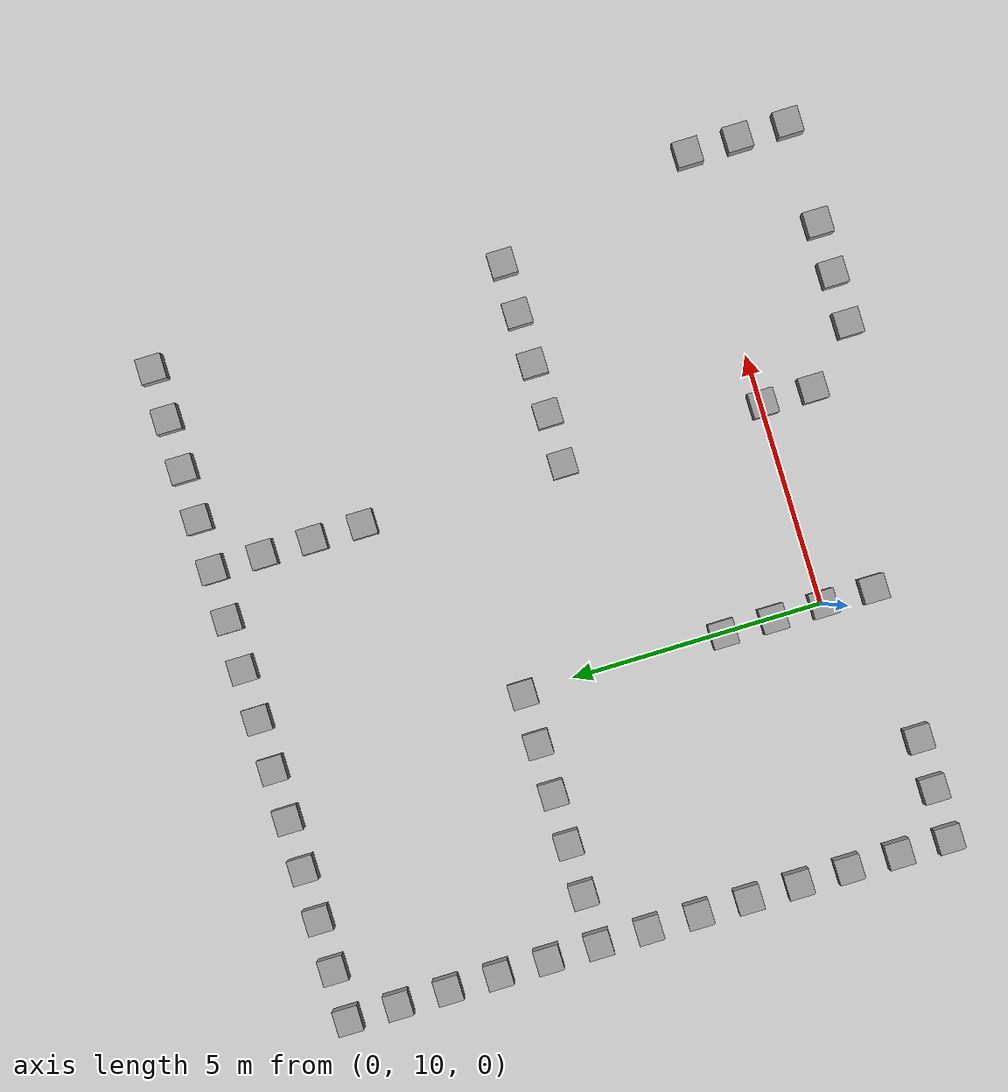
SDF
<sdf version="1.6">
 <world name="default">
  <model name="ground_plane">
   <static>1</static>
   <link name="link">
    <collision name="collision">
     <geometry><plane><normal>0 0 1</normal><size>100 100</size></plane></geometry>
     <surface><friction><ode><mu>100</mu><mu2>50</mu2></ode></friction></surface>
    </collision>
    <visual name="visual">
     <cast_shadows>0</cast_shadows>
     <geometry><plane><normal>0 0 1</normal><size>100 100</size></plane></geometry>
     <material>
      <script><uri>file://media/materials/scripts/gazebo.material</uri><name>Gazebo/Grey</name></script>
     </material>
    </visual>
    <velocity_decay><linear>0</linear><angular>0</angular></velocity_decay>
   </link>
  </model>
  <model name="unit_box_39">
   <pose>9 8.00001 0.5 0 -0 -1e-06</pose>
   <static>true</static>
   <link name="link">
    <inertial>
     <mass>1</mass>
     <inertia><ixx>1</ixx><ixy>0</ixy><ixz>0</ixz><iyy>1</iyy><iyz>0</iyz><izz>1</izz></inertia>
    </inertial>
    <collision name="collision"><geometry><box><size>0.5 0.5 0.5</size></box></geometry></collision>
    <visual name="visual">
     <geometry><box><size>0.5 0.5 0.5</size></box></geometry>
     <material>
      <script><uri>file://media/materials/scripts/gazebo.material</uri><name>Gazebo/Grey</name></script>
     </material>
    </visual>
    <velocity_decay><linear>0</linear><angular>0</angular></velocity_decay>
   </link>
   <static>0</static>
  </model>
  <model name="unit_box_52">
   <pose>7 8.00001 0.5 0 -0 1e-06</pose>
   <static>true</static>
   <link name="link">
    <inertial>
     <mass>1</mass>
     <inertia><ixx>1</ixx><ixy>0</ixy><ixz>0</ixz><iyy>1</iyy><iyz>0</iyz><izz>1</izz></inertia>
    </inertial>
    <collision name="collision"><geometry><box><size>0.5 0.5 0.5</size></box></geometry></collision>
    <visual name="visual">
     <geometry><box><size>0.5 0.5 0.5</size></box></geometry>
     <material>
      <script><uri>file://media/materials/scripts/gazebo.material</uri><name>Gazebo/Grey</name></script>
     </material>
    </visual>
    <velocity_decay><linear>0</linear><angular>0</angular></velocity_decay>
   </link>
   <static>0</static>
  </model>
  <model name="unit_box_53">
   <pose>6 8 0.5 0 -0 -3e-06</pose>
   <static>true</static>
   <link name="link">
    <inertial>
     <mass>1</mass>
     <inertia><ixx>1</ixx><ixy>0</ixy><ixz>0</ixz><iyy>1</iyy><iyz>0</iyz><izz>1</izz></inertia>
    </inertial>
    <collision name="collision"><geometry><box><size>0.5 0.5 0.5</size></box></geometry></collision>
    <visual name="visual">
     <geometry><box><size>0.5 0.5 0.5</size></box></geometry>
     <material>
      <script><uri>file://media/materials/scripts/gazebo.material</uri><name>Gazebo/Grey</name></script>
     </material>
    </visual>
    <velocity_decay><linear>0</linear><angular>0</angular></velocity_decay>
   </link>
   <static>0</static>
  </model>
  <model name="unit_box_54">
   <pose>5 8 0.5 -0 -0 -1e-06</pose>
   <static>true</static>
   <link name="link">
    <inertial>
     <mass>1</mass>
     <inertia><ixx>1</ixx><ixy>0</ixy><ixz>0</ixz><iyy>1</iyy><iyz>0</iyz><izz>1</izz></inertia>
    </inertial>
    <collision name="collision"><geometry><box><size>0.5 0.5 0.5</size></box></geometry></collision>
    <visual name="visual">
     <geometry><box><size>0.5 0.5 0.5</size></box></geometry>
     <material>
      <script><uri>file://media/materials/scripts/gazebo.material</uri><name>Gazebo/Grey</name></script>
     </material>
    </visual>
    <velocity_decay><linear>0</linear><angular>0</angular></velocity_decay>
   </link>
   <static>0</static>
  </model>
  <model name="unit_box_55">
   <pose>9 9.00001 0.5 0 -0 -1e-06</pose>
   <static>true</static>
   <link name="link">
    <inertial>
     <mass>1</mass>
     <inertia><ixx>1</ixx><ixy>0</ixy><ixz>0</ixz><iyy>1</iyy><iyz>0</iyz><izz>1</izz></inertia>
    </inertial>
    <collision name="collision"><geometry><box><size>0.5 0.5 0.5</size></box></geometry></collision>
    <visual name="visual">
     <geometry><box><size>0.5 0.5 0.5</size></box></geometry>
     <material>
      <script><uri>file://media/materials/scripts/gazebo.material</uri><name>Gazebo/Grey</name></script>
     </material>
    </visual>
    <velocity_decay><linear>0</linear><angular>0</angular></velocity_decay>
   </link>
   <static>0</static>
  </model>
  <model name="unit_box_56">
   <pose>9 10 0.5 -0 -0 -2e-06</pose>
   <static>true</static>
   <link name="link">
    <inertial>
     <mass>1</mass>
     <inertia><ixx>1</ixx><ixy>0</ixy><ixz>0</ixz><iyy>1</iyy><iyz>0</iyz><izz>1</izz></inertia>
    </inertial>
    <collision name="collision"><geometry><box><size>0.5 0.5 0.5</size></box></geometry></collision>
    <visual name="visual">
     <geometry><box><size>0.5 0.5 0.5</size></box></geometry>
     <material>
      <script><uri>file://media/materials/scripts/gazebo.material</uri><name>Gazebo/Grey</name></script>
     </material>
    </visual>
    <velocity_decay><linear>0</linear><angular>0</angular></velocity_decay>
   </link>
   <static>0</static>
  </model>
  <model name="unit_box_60">
   <pose>-0.004062 8.99709 0.5 0 0 -8.2e-05</pose>
   <static>true</static>
   <link name="link">
    <inertial>
     <mass>1</mass>
     <inertia><ixx>1</ixx><ixy>0</ixy><ixz>0</ixz><iyy>1</iyy><iyz>0</iyz><izz>1</izz></inertia>
    </inertial>
    <collision name="collision"><geometry><box><size>0.5 0.5 0.5</size></box></geometry></collision>
    <visual name="visual">
     <geometry><box><size>0.5 0.5 0.5</size></box></geometry>
     <material>
      <script><uri>file://media/materials/scripts/gazebo.material</uri><name>Gazebo/Grey</name></script>
     </material>
    </visual>
    <velocity_decay><linear>0</linear><angular>0</angular></velocity_decay>
   </link>
   <static>0</static>
  </model>
  <model name="unit_box_62">
   <pose>-0 10 0.5 0 -0 0</pose>
   <static>true</static>
   <link name="link">
    <inertial>
     <mass>1</mass>
     <inertia><ixx>1</ixx><ixy>0</ixy><ixz>0</ixz><iyy>1</iyy><iyz>0</iyz><izz>1</izz></inertia>
    </inertial>
    <collision name="collision"><geometry><box><size>0.5 0.5 0.5</size></box></geometry></collision>
    <visual name="visual">
     <geometry><box><size>0.5 0.5 0.5</size></box></geometry>
     <material>
      <script><uri>file://media/materials/scripts/gazebo.material</uri><name>Gazebo/Grey</name></script>
     </material>
    </visual>
    <velocity_decay><linear>0</linear><angular>0</angular></velocity_decay>
   </link>
   <static>0</static>
  </model>
  <model name="unit_box_63">
   <pose>0 11 0.5 -0 -0 -0</pose>
   <static>true</static>
   <link name="link">
    <inertial>
     <mass>1</mass>
     <inertia><ixx>1</ixx><ixy>0</ixy><ixz>0</ixz><iyy>1</iyy><iyz>0</iyz><izz>1</izz></inertia>
    </inertial>
    <collision name="collision"><geometry><box><size>0.5 0.5 0.5</size></box></geometry></collision>
    <visual name="visual">
     <geometry><box><size>0.5 0.5 0.5</size></box></geometry>
     <material>
      <script><uri>file://media/materials/scripts/gazebo.material</uri><name>Gazebo/Grey</name></script>
     </material>
    </visual>
    <velocity_decay><linear>0</linear><angular>0</angular></velocity_decay>
   </link>
   <static>0</static>
  </model>
  <model name="unit_box_64">
   <pose>-0 12 0.5 0 -0 0</pose>
   <static>true</static>
   <link name="link">
    <inertial>
     <mass>1</mass>
     <inertia><ixx>1</ixx><ixy>0</ixy><ixz>0</ixz><iyy>1</iyy><iyz>0</iyz><izz>1</izz></inertia>
    </inertial>
    <collision name="collision"><geometry><box><size>0.5 0.5 0.5</size></box></geometry></collision>
    <visual name="visual">
     <geometry><box><size>0.5 0.5 0.5</size></box></geometry>
     <material>
      <script><uri>file://media/materials/scripts/gazebo.material</uri><name>Gazebo/Grey</name></script>
     </material>
    </visual>
    <velocity_decay><linear>0</linear><angular>0</angular></velocity_decay>
   </link>
   <static>0</static>
  </model>
  <model name="unit_box_65">
   <pose>4 14 0.5 0 -0 0</pose>
   <static>true</static>
   <link name="link">
    <inertial>
     <mass>1</mass>
     <inertia><ixx>1</ixx><ixy>0</ixy><ixz>0</ixz><iyy>1</iyy><iyz>0</iyz><izz>1</izz></inertia>
    </inertial>
    <collision name="collision"><geometry><box><size>0.5 0.5 0.5</size></box></geometry></collision>
    <visual name="visual">
     <geometry><box><size>0.5 0.5 0.5</size></box></geometry>
     <material>
      <script><uri>file://media/materials/scripts/gazebo.material</uri><name>Gazebo/Grey</name></script>
     </material>
    </visual>
    <velocity_decay><linear>0</linear><angular>0</angular></velocity_decay>
   </link>
   <static>0</static>
  </model>
  <model name="unit_box_66">
   <pose>5 14 0.5 0 -0 0</pose>
   <static>true</static>
   <link name="link">
    <inertial>
     <mass>1</mass>
     <inertia><ixx>1</ixx><ixy>0</ixy><ixz>0</ixz><iyy>1</iyy><iyz>0</iyz><izz>1</izz></inertia>
    </inertial>
    <collision name="collision"><geometry><box><size>0.5 0.5 0.5</size></box></geometry></collision>
    <visual name="visual">
     <geometry><box><size>0.5 0.5 0.5</size></box></geometry>
     <material>
      <script><uri>file://media/materials/scripts/gazebo.material</uri><name>Gazebo/Grey</name></script>
     </material>
    </visual>
    <velocity_decay><linear>0</linear><angular>0</angular></velocity_decay>
   </link>
   <static>0</static>
  </model>
  <model name="unit_box_69">
   <pose>-5 8.99999 0.5 0 -0 7e-06</pose>
   <static>true</static>
   <link name="link">
    <inertial>
     <mass>1</mass>
     <inertia><ixx>1</ixx><ixy>0</ixy><ixz>0</ixz><iyy>1</iyy><iyz>0</iyz><izz>1</izz></inertia>
    </inertial>
    <collision name="collision"><geometry><box><size>0.5 0.5 0.5</size></box></geometry></collision>
    <visual name="visual">
     <geometry><box><size>0.5 0.5 0.5</size></box></geometry>
     <material>
      <script><uri>file://media/materials/scripts/gazebo.material</uri><name>Gazebo/Grey</name></script>
     </material>
    </visual>
    <velocity_decay><linear>0</linear><angular>0</angular></velocity_decay>
   </link>
   <static>0</static>
  </model>
  <model name="unit_box_70">
   <pose>-4 9 0.5 0 -0 7e-06</pose>
   <static>true</static>
   <link name="link">
    <inertial>
     <mass>1</mass>
     <inertia><ixx>1</ixx><ixy>0</ixy><ixz>0</ixz><iyy>1</iyy><iyz>0</iyz><izz>1</izz></inertia>
    </inertial>
    <collision name="collision"><geometry><box><size>0.5 0.5 0.5</size></box></geometry></collision>
    <visual name="visual">
     <geometry><box><size>0.5 0.5 0.5</size></box></geometry>
     <material>
      <script><uri>file://media/materials/scripts/gazebo.material</uri><name>Gazebo/Grey</name></script>
     </material>
    </visual>
    <velocity_decay><linear>0</linear><angular>0</angular></velocity_decay>
   </link>
   <static>0</static>
  </model>
  <model name="unit_box_71">
   <pose>-2.99999 9 0.5 0 -0 2e-06</pose>
   <static>true</static>
   <link name="link">
    <inertial>
     <mass>1</mass>
     <inertia><ixx>1</ixx><ixy>0</ixy><ixz>0</ixz><iyy>1</iyy><iyz>0</iyz><izz>1</izz></inertia>
    </inertial>
    <collision name="collision"><geometry><box><size>0.5 0.5 0.5</size></box></geometry></collision>
    <visual name="visual">
     <geometry><box><size>0.5 0.5 0.5</size></box></geometry>
     <material>
      <script><uri>file://media/materials/scripts/gazebo.material</uri><name>Gazebo/Grey</name></script>
     </material>
    </visual>
    <velocity_decay><linear>0</linear><angular>0</angular></velocity_decay>
   </link>
   <static>0</static>
  </model>
  <model name="unit_box_72">
   <pose>-4.99999 9.99999 0.5 0 -0 7e-06</pose>
   <static>true</static>
   <link name="link">
    <inertial>
     <mass>1</mass>
     <inertia><ixx>1</ixx><ixy>0</ixy><ixz>0</ixz><iyy>1</iyy><iyz>0</iyz><izz>1</izz></inertia>
    </inertial>
    <collision name="collision"><geometry><box><size>0.5 0.5 0.5</size></box></geometry></collision>
    <visual name="visual">
     <geometry><box><size>0.5 0.5 0.5</size></box></geometry>
     <material>
      <script><uri>file://media/materials/scripts/gazebo.material</uri><name>Gazebo/Grey</name></script>
     </material>
    </visual>
    <velocity_decay><linear>0</linear><angular>0</angular></velocity_decay>
   </link>
   <static>0</static>
  </model>
  <model name="unit_box_73">
   <pose>-5.00001 11 0.5 0 -0 8e-06</pose>
   <static>true</static>
   <link name="link">
    <inertial>
     <mass>1</mass>
     <inertia><ixx>1</ixx><ixy>0</ixy><ixz>0</ixz><iyy>1</iyy><iyz>0</iyz><izz>1</izz></inertia>
    </inertial>
    <collision name="collision"><geometry><box><size>0.5 0.5 0.5</size></box></geometry></collision>
    <visual name="visual">
     <geometry><box><size>0.5 0.5 0.5</size></box></geometry>
     <material>
      <script><uri>file://media/materials/scripts/gazebo.material</uri><name>Gazebo/Grey</name></script>
     </material>
    </visual>
    <velocity_decay><linear>0</linear><angular>0</angular></velocity_decay>
   </link>
   <static>0</static>
  </model>
  <model name="unit_box_74">
   <pose>-5.00001 12 0.5 0 -0 8e-06</pose>
   <static>true</static>
   <link name="link">
    <inertial>
     <mass>1</mass>
     <inertia><ixx>1</ixx><ixy>0</ixy><ixz>0</ixz><iyy>1</iyy><iyz>0</iyz><izz>1</izz></inertia>
    </inertial>
    <collision name="collision"><geometry><box><size>0.5 0.5 0.5</size></box></geometry></collision>
    <visual name="visual">
     <geometry><box><size>0.5 0.5 0.5</size></box></geometry>
     <material>
      <script><uri>file://media/materials/scripts/gazebo.material</uri><name>Gazebo/Grey</name></script>
     </material>
    </visual>
    <velocity_decay><linear>0</linear><angular>0</angular></velocity_decay>
   </link>
   <static>0</static>
  </model>
  <model name="unit_box_75">
   <pose>-5 13 0.5 0 -0 5e-06</pose>
   <static>true</static>
   <link name="link">
    <inertial>
     <mass>1</mass>
     <inertia><ixx>1</ixx><ixy>0</ixy><ixz>0</ixz><iyy>1</iyy><iyz>0</iyz><izz>1</izz></inertia>
    </inertial>
    <collision name="collision"><geometry><box><size>0.5 0.5 0.5</size></box></geometry></collision>
    <visual name="visual">
     <geometry><box><size>0.5 0.5 0.5</size></box></geometry>
     <material>
      <script><uri>file://media/materials/scripts/gazebo.material</uri><name>Gazebo/Grey</name></script>
     </material>
    </visual>
    <velocity_decay><linear>0</linear><angular>0</angular></velocity_decay>
   </link>
   <static>0</static>
  </model>
  <model name="unit_box_76">
   <pose>-5 14 0.5 0 -0 6e-06</pose>
   <static>true</static>
   <link name="link">
    <inertial>
     <mass>1</mass>
     <inertia><ixx>1</ixx><ixy>0</ixy><ixz>0</ixz><iyy>1</iyy><iyz>0</iyz><izz>1</izz></inertia>
    </inertial>
    <collision name="collision"><geometry><box><size>0.5 0.5 0.5</size></box></geometry></collision>
    <visual name="visual">
     <geometry><box><size>0.5 0.5 0.5</size></box></geometry>
     <material>
      <script><uri>file://media/materials/scripts/gazebo.material</uri><name>Gazebo/Grey</name></script>
     </material>
    </visual>
    <velocity_decay><linear>0</linear><angular>0</angular></velocity_decay>
   </link>
   <static>0</static>
  </model>
  <model name="unit_box_77">
   <pose>-4.99999 15 0.5 0 -0 7e-06</pose>
   <static>true</static>
   <link name="link">
    <inertial>
     <mass>1</mass>
     <inertia><ixx>1</ixx><ixy>0</ixy><ixz>0</ixz><iyy>1</iyy><iyz>0</iyz><izz>1</izz></inertia>
    </inertial>
    <collision name="collision"><geometry><box><size>0.5 0.5 0.5</size></box></geometry></collision>
    <visual name="visual">
     <geometry><box><size>0.5 0.5 0.5</size></box></geometry>
     <material>
      <script><uri>file://media/materials/scripts/gazebo.material</uri><name>Gazebo/Grey</name></script>
     </material>
    </visual>
    <velocity_decay><linear>0</linear><angular>0</angular></velocity_decay>
   </link>
   <static>0</static>
  </model>
  <model name="unit_box_78">
   <pose>-5 16 0.5 0 -0 7e-06</pose>
   <static>true</static>
   <link name="link">
    <inertial>
     <mass>1</mass>
     <inertia><ixx>1</ixx><ixy>0</ixy><ixz>0</ixz><iyy>1</iyy><iyz>0</iyz><izz>1</izz></inertia>
    </inertial>
    <collision name="collision"><geometry><box><size>0.5 0.5 0.5</size></box></geometry></collision>
    <visual name="visual">
     <geometry><box><size>0.5 0.5 0.5</size></box></geometry>
     <material>
      <script><uri>file://media/materials/scripts/gazebo.material</uri><name>Gazebo/Grey</name></script>
     </material>
    </visual>
    <velocity_decay><linear>0</linear><angular>0</angular></velocity_decay>
   </link>
   <static>0</static>
  </model>
  <model name="unit_box_79">
   <pose>-4.99997 17 0.5 0 -0 6e-06</pose>
   <static>true</static>
   <link name="link">
    <inertial>
     <mass>1</mass>
     <inertia><ixx>1</ixx><ixy>0</ixy><ixz>0</ixz><iyy>1</iyy><iyz>0</iyz><izz>1</izz></inertia>
    </inertial>
    <collision name="collision"><geometry><box><size>0.5 0.5 0.5</size></box></geometry></collision>
    <visual name="visual">
     <geometry><box><size>0.5 0.5 0.5</size></box></geometry>
     <material>
      <script><uri>file://media/materials/scripts/gazebo.material</uri><name>Gazebo/Grey</name></script>
     </material>
    </visual>
    <velocity_decay><linear>0</linear><angular>0</angular></velocity_decay>
   </link>
   <static>0</static>
  </model>
  <model name="unit_box_80">
   <pose>-4.99997 18 0.5 0 -0 3e-06</pose>
   <static>true</static>
   <link name="link">
    <inertial>
     <mass>1</mass>
     <inertia><ixx>1</ixx><ixy>0</ixy><ixz>0</ixz><iyy>1</iyy><iyz>0</iyz><izz>1</izz></inertia>
    </inertial>
    <collision name="collision"><geometry><box><size>0.5 0.5 0.5</size></box></geometry></collision>
    <visual name="visual">
     <geometry><box><size>0.5 0.5 0.5</size></box></geometry>
     <material>
      <script><uri>file://media/materials/scripts/gazebo.material</uri><name>Gazebo/Grey</name></script>
     </material>
    </visual>
    <velocity_decay><linear>0</linear><angular>0</angular></velocity_decay>
   </link>
   <static>0</static>
  </model>
  <model name="unit_box_81">
   <pose>-4 16 0.5 0 -0 7e-06</pose>
   <static>true</static>
   <link name="link">
    <inertial>
     <mass>1</mass>
     <inertia><ixx>1</ixx><ixy>0</ixy><ixz>0</ixz><iyy>1</iyy><iyz>0</iyz><izz>1</izz></inertia>
    </inertial>
    <collision name="collision"><geometry><box><size>0.5 0.5 0.5</size></box></geometry></collision>
    <visual name="visual">
     <geometry><box><size>0.5 0.5 0.5</size></box></geometry>
     <material>
      <script><uri>file://media/materials/scripts/gazebo.material</uri><name>Gazebo/Grey</name></script>
     </material>
    </visual>
    <velocity_decay><linear>0</linear><angular>0</angular></velocity_decay>
   </link>
   <static>0</static>
  </model>
  <model name="unit_box_82">
   <pose>-2.99999 16 0.5 0 -0 1.1e-05</pose>
   <static>true</static>
   <link name="link">
    <inertial>
     <mass>1</mass>
     <inertia><ixx>1</ixx><ixy>0</ixy><ixz>0</ixz><iyy>1</iyy><iyz>0</iyz><izz>1</izz></inertia>
    </inertial>
    <collision name="collision"><geometry><box><size>0.5 0.5 0.5</size></box></geometry></collision>
    <visual name="visual">
     <geometry><box><size>0.5 0.5 0.5</size></box></geometry>
     <material>
      <script><uri>file://media/materials/scripts/gazebo.material</uri><name>Gazebo/Grey</name></script>
     </material>
    </visual>
    <velocity_decay><linear>0</linear><angular>0</angular></velocity_decay>
   </link>
   <static>0</static>
  </model>
  <model name="unit_box_83">
   <pose>-1.99999 16 0.5 0 -0 1.1e-05</pose>
   <static>true</static>
   <link name="link">
    <inertial>
     <mass>1</mass>
     <inertia><ixx>1</ixx><ixy>0</ixy><ixz>0</ixz><iyy>1</iyy><iyz>0</iyz><izz>1</izz></inertia>
    </inertial>
    <collision name="collision"><geometry><box><size>0.5 0.5 0.5</size></box></geometry></collision>
    <visual name="visual">
     <geometry><box><size>0.5 0.5 0.5</size></box></geometry>
     <material>
      <script><uri>file://media/materials/scripts/gazebo.material</uri><name>Gazebo/Grey</name></script>
     </material>
    </visual>
    <velocity_decay><linear>0</linear><angular>0</angular></velocity_decay>
   </link>
   <static>0</static>
  </model>
  <model name="unit_box_84">
   <pose>-0.999991 16 0.5 0 -0 1.1e-05</pose>
   <static>true</static>
   <link name="link">
    <inertial>
     <mass>1</mass>
     <inertia><ixx>1</ixx><ixy>0</ixy><ixz>0</ixz><iyy>1</iyy><iyz>0</iyz><izz>1</izz></inertia>
    </inertial>
    <collision name="collision"><geometry><box><size>0.5 0.5 0.5</size></box></geometry></collision>
    <visual name="visual">
     <geometry><box><size>0.5 0.5 0.5</size></box></geometry>
     <material>
      <script><uri>file://media/materials/scripts/gazebo.material</uri><name>Gazebo/Grey</name></script>
     </material>
    </visual>
    <velocity_decay><linear>0</linear><angular>0</angular></velocity_decay>
   </link>
   <static>0</static>
  </model>
  <model name="unit_box_85">
   <pose>1.2e-05 16 0.5 0 -0 1e-05</pose>
   <static>true</static>
   <link name="link">
    <inertial>
     <mass>1</mass>
     <inertia><ixx>1</ixx><ixy>0</ixy><ixz>0</ixz><iyy>1</iyy><iyz>0</iyz><izz>1</izz></inertia>
    </inertial>
    <collision name="collision"><geometry><box><size>0.5 0.5 0.5</size></box></geometry></collision>
    <visual name="visual">
     <geometry><box><size>0.5 0.5 0.5</size></box></geometry>
     <material>
      <script><uri>file://media/materials/scripts/gazebo.material</uri><name>Gazebo/Grey</name></script>
     </material>
    </visual>
    <velocity_decay><linear>0</linear><angular>0</angular></velocity_decay>
   </link>
   <static>0</static>
  </model>
  <model name="unit_box_86">
   <pose>6 14 0.5 0 -0 1e-06</pose>
   <static>true</static>
   <link name="link">
    <inertial>
     <mass>1</mass>
     <inertia><ixx>1</ixx><ixy>0</ixy><ixz>0</ixz><iyy>1</iyy><iyz>0</iyz><izz>1</izz></inertia>
    </inertial>
    <collision name="collision"><geometry><box><size>0.5 0.5 0.5</size></box></geometry></collision>
    <visual name="visual">
     <geometry><box><size>0.5 0.5 0.5</size></box></geometry>
     <material>
      <script><uri>file://media/materials/scripts/gazebo.material</uri><name>Gazebo/Grey</name></script>
     </material>
    </visual>
    <velocity_decay><linear>0</linear><angular>0</angular></velocity_decay>
   </link>
   <static>0</static>
  </model>
  <model name="unit_box_87">
   <pose>7 14 0.5 0 -0 1e-06</pose>
   <static>true</static>
   <link name="link">
    <inertial>
     <mass>1</mass>
     <inertia><ixx>1</ixx><ixy>0</ixy><ixz>0</ixz><iyy>1</iyy><iyz>0</iyz><izz>1</izz></inertia>
    </inertial>
    <collision name="collision"><geometry><box><size>0.5 0.5 0.5</size></box></geometry></collision>
    <visual name="visual">
     <geometry><box><size>0.5 0.5 0.5</size></box></geometry>
     <material>
      <script><uri>file://media/materials/scripts/gazebo.material</uri><name>Gazebo/Grey</name></script>
     </material>
    </visual>
    <velocity_decay><linear>0</linear><angular>0</angular></velocity_decay>
   </link>
   <static>0</static>
  </model>
  <model name="unit_box_88">
   <pose>8 14 0.5 0 -0 0</pose>
   <static>true</static>
   <link name="link">
    <inertial>
     <mass>1</mass>
     <inertia><ixx>1</ixx><ixy>0</ixy><ixz>0</ixz><iyy>1</iyy><iyz>0</iyz><izz>1</izz></inertia>
    </inertial>
    <collision name="collision"><geometry><box><size>0.5 0.5 0.5</size></box></geometry></collision>
    <visual name="visual">
     <geometry><box><size>0.5 0.5 0.5</size></box></geometry>
     <material>
      <script><uri>file://media/materials/scripts/gazebo.material</uri><name>Gazebo/Grey</name></script>
     </material>
    </visual>
    <velocity_decay><linear>0</linear><angular>0</angular></velocity_decay>
   </link>
   <static>0</static>
  </model>
  <model name="unit_box_91">
   <pose>3.99999 9 0.5 0 -0 1e-06</pose>
   <static>true</static>
   <link name="link">
    <inertial>
     <mass>1</mass>
     <inertia><ixx>1</ixx><ixy>0</ixy><ixz>0</ixz><iyy>1</iyy><iyz>0</iyz><izz>1</izz></inertia>
    </inertial>
    <collision name="collision"><geometry><box><size>0.5 0.5 0.5</size></box></geometry></collision>
    <visual name="visual">
     <geometry><box><size>0.5 0.5 0.5</size></box></geometry>
     <material>
      <script><uri>file://media/materials/scripts/gazebo.material</uri><name>Gazebo/Grey</name></script>
     </material>
    </visual>
    <velocity_decay><linear>0</linear><angular>0</angular></velocity_decay>
   </link>
   <static>0</static>
  </model>
  <model name="unit_box_92">
   <pose>4 10 0.5 0 -0 1e-06</pose>
   <static>true</static>
   <link name="link">
    <inertial>
     <mass>1</mass>
     <inertia><ixx>1</ixx><ixy>0</ixy><ixz>0</ixz><iyy>1</iyy><iyz>0</iyz><izz>1</izz></inertia>
    </inertial>
    <collision name="collision"><geometry><box><size>0.5 0.5 0.5</size></box></geometry></collision>
    <visual name="visual">
     <geometry><box><size>0.5 0.5 0.5</size></box></geometry>
     <material>
      <script><uri>file://media/materials/scripts/gazebo.material</uri><name>Gazebo/Grey</name></script>
     </material>
    </visual>
    <velocity_decay><linear>0</linear><angular>0</angular></velocity_decay>
   </link>
   <static>0</static>
  </model>
  <model name="unit_box_96">
   <pose>-4.99997 19 0.5 0 -0 1e-06</pose>
   <static>true</static>
   <link name="link">
    <inertial>
     <mass>1</mass>
     <inertia><ixx>1</ixx><ixy>0</ixy><ixz>0</ixz><iyy>1</iyy><iyz>0</iyz><izz>1</izz></inertia>
    </inertial>
    <collision name="collision"><geometry><box><size>0.5 0.5 0.5</size></box></geometry></collision>
    <visual name="visual">
     <geometry><box><size>0.5 0.5 0.5</size></box></geometry>
     <material>
      <script><uri>file://media/materials/scripts/gazebo.material</uri><name>Gazebo/Grey</name></script>
     </material>
    </visual>
    <velocity_decay><linear>0</linear><angular>0</angular></velocity_decay>
   </link>
   <static>0</static>
  </model>
  <model name="unit_box_97">
   <pose>-4.99997 20 0.5 0 -0 1e-06</pose>
   <static>true</static>
   <link name="link">
    <inertial>
     <mass>1</mass>
     <inertia><ixx>1</ixx><ixy>0</ixy><ixz>0</ixz><iyy>1</iyy><iyz>0</iyz><izz>1</izz></inertia>
    </inertial>
    <collision name="collision"><geometry><box><size>0.5 0.5 0.5</size></box></geometry></collision>
    <visual name="visual">
     <geometry><box><size>0.5 0.5 0.5</size></box></geometry>
     <material>
      <script><uri>file://media/materials/scripts/gazebo.material</uri><name>Gazebo/Grey</name></script>
     </material>
    </visual>
    <velocity_decay><linear>0</linear><angular>0</angular></velocity_decay>
   </link>
   <static>0</static>
  </model>
  <model name="unit_box_98">
   <pose>-5.00001 21 0.5 0 -0 0</pose>
   <static>true</static>
   <link name="link">
    <inertial>
     <mass>1</mass>
     <inertia><ixx>1</ixx><ixy>0</ixy><ixz>0</ixz><iyy>1</iyy><iyz>0</iyz><izz>1</izz></inertia>
    </inertial>
    <collision name="collision"><geometry><box><size>0.5 0.5 0.5</size></box></geometry></collision>
    <visual name="visual">
     <geometry><box><size>0.5 0.5 0.5</size></box></geometry>
     <material>
      <script><uri>file://media/materials/scripts/gazebo.material</uri><name>Gazebo/Grey</name></script>
     </material>
    </visual>
    <velocity_decay><linear>0</linear><angular>0</angular></velocity_decay>
   </link>
   <static>0</static>
  </model>
  <model name="unit_box_99">
   <pose>-4.00001 21 0.5 0 0 -1e-06</pose>
   <static>true</static>
   <link name="link">
    <inertial>
     <mass>1</mass>
     <inertia><ixx>1</ixx><ixy>0</ixy><ixz>0</ixz><iyy>1</iyy><iyz>0</iyz><izz>1</izz></inertia>
    </inertial>
    <collision name="collision"><geometry><box><size>0.5 0.5 0.5</size></box></geometry></collision>
    <visual name="visual">
     <geometry><box><size>0.5 0.5 0.5</size></box></geometry>
     <material>
      <script><uri>file://media/materials/scripts/gazebo.material</uri><name>Gazebo/Grey</name></script>
     </material>
    </visual>
    <velocity_decay><linear>0</linear><angular>0</angular></velocity_decay>
   </link>
   <static>0</static>
  </model>
  <model name="unit_box_100">
   <pose>-3.00001 21 0.5 0 0 -1e-06</pose>
   <static>true</static>
   <link name="link">
    <inertial>
     <mass>1</mass>
     <inertia><ixx>1</ixx><ixy>0</ixy><ixz>0</ixz><iyy>1</iyy><iyz>0</iyz><izz>1</izz></inertia>
    </inertial>
    <collision name="collision"><geometry><box><size>0.5 0.5 0.5</size></box></geometry></collision>
    <visual name="visual">
     <geometry><box><size>0.5 0.5 0.5</size></box></geometry>
     <material>
      <script><uri>file://media/materials/scripts/gazebo.material</uri><name>Gazebo/Grey</name></script>
     </material>
    </visual>
    <velocity_decay><linear>0</linear><angular>0</angular></velocity_decay>
   </link>
   <static>0</static>
  </model>
  <model name="unit_box_101">
   <pose>-2.00001 21 0.5 0 -0 -1e-06</pose>
   <static>true</static>
   <link name="link">
    <inertial>
     <mass>1</mass>
     <inertia><ixx>1</ixx><ixy>0</ixy><ixz>0</ixz><iyy>1</iyy><iyz>0</iyz><izz>1</izz></inertia>
    </inertial>
    <collision name="collision"><geometry><box><size>0.5 0.5 0.5</size></box></geometry></collision>
    <visual name="visual">
     <geometry><box><size>0.5 0.5 0.5</size></box></geometry>
     <material>
      <script><uri>file://media/materials/scripts/gazebo.material</uri><name>Gazebo/Grey</name></script>
     </material>
    </visual>
    <velocity_decay><linear>0</linear><angular>0</angular></velocity_decay>
   </link>
   <static>0</static>
  </model>
  <model name="unit_box_102">
   <pose>-1.00001 21 0.5 0 -0 0</pose>
   <static>true</static>
   <link name="link">
    <inertial>
     <mass>1</mass>
     <inertia><ixx>1</ixx><ixy>0</ixy><ixz>0</ixz><iyy>1</iyy><iyz>0</iyz><izz>1</izz></inertia>
    </inertial>
    <collision name="collision"><geometry><box><size>0.5 0.5 0.5</size></box></geometry></collision>
    <visual name="visual">
     <geometry><box><size>0.5 0.5 0.5</size></box></geometry>
     <material>
      <script><uri>file://media/materials/scripts/gazebo.material</uri><name>Gazebo/Grey</name></script>
     </material>
    </visual>
    <velocity_decay><linear>0</linear><angular>0</angular></velocity_decay>
   </link>
   <static>0</static>
  </model>
  <model name="unit_box_103">
   <pose>-1e-05 21 0.5 -0 -0 -0</pose>
   <static>true</static>
   <link name="link">
    <inertial>
     <mass>1</mass>
     <inertia><ixx>1</ixx><ixy>0</ixy><ixz>0</ixz><iyy>1</iyy><iyz>0</iyz><izz>1</izz></inertia>
    </inertial>
    <collision name="collision"><geometry><box><size>0.5 0.5 0.5</size></box></geometry></collision>
    <visual name="visual">
     <geometry><box><size>0.5 0.5 0.5</size></box></geometry>
     <material>
      <script><uri>file://media/materials/scripts/gazebo.material</uri><name>Gazebo/Grey</name></script>
     </material>
    </visual>
    <velocity_decay><linear>0</linear><angular>0</angular></velocity_decay>
   </link>
   <static>0</static>
  </model>
  <model name="unit_box_104">
   <pose>0.999991 21 0.5 0 -0 0</pose>
   <static>true</static>
   <link name="link">
    <inertial>
     <mass>1</mass>
     <inertia><ixx>1</ixx><ixy>0</ixy><ixz>0</ixz><iyy>1</iyy><iyz>0</iyz><izz>1</izz></inertia>
    </inertial>
    <collision name="collision"><geometry><box><size>0.5 0.5 0.5</size></box></geometry></collision>
    <visual name="visual">
     <geometry><box><size>0.5 0.5 0.5</size></box></geometry>
     <material>
      <script><uri>file://media/materials/scripts/gazebo.material</uri><name>Gazebo/Grey</name></script>
     </material>
    </visual>
    <velocity_decay><linear>0</linear><angular>0</angular></velocity_decay>
   </link>
   <static>0</static>
  </model>
  <model name="unit_box_105">
   <pose>1.99999 21 0.5 0 -0 0</pose>
   <static>true</static>
   <link name="link">
    <inertial>
     <mass>1</mass>
     <inertia><ixx>1</ixx><ixy>0</ixy><ixz>0</ixz><iyy>1</iyy><iyz>0</iyz><izz>1</izz></inertia>
    </inertial>
    <collision name="collision"><geometry><box><size>0.5 0.5 0.5</size></box></geometry></collision>
    <visual name="visual">
     <geometry><box><size>0.5 0.5 0.5</size></box></geometry>
     <material>
      <script><uri>file://media/materials/scripts/gazebo.material</uri><name>Gazebo/Grey</name></script>
     </material>
    </visual>
    <velocity_decay><linear>0</linear><angular>0</angular></velocity_decay>
   </link>
   <static>0</static>
  </model>
  <model name="unit_box_106">
   <pose>2.99999 21 0.5 0 -0 1e-06</pose>
   <static>true</static>
   <link name="link">
    <inertial>
     <mass>1</mass>
     <inertia><ixx>1</ixx><ixy>0</ixy><ixz>0</ixz><iyy>1</iyy><iyz>0</iyz><izz>1</izz></inertia>
    </inertial>
    <collision name="collision"><geometry><box><size>0.5 0.5 0.5</size></box></geometry></collision>
    <visual name="visual">
     <geometry><box><size>0.5 0.5 0.5</size></box></geometry>
     <material>
      <script><uri>file://media/materials/scripts/gazebo.material</uri><name>Gazebo/Grey</name></script>
     </material>
    </visual>
    <velocity_decay><linear>0</linear><angular>0</angular></velocity_decay>
   </link>
   <static>0</static>
  </model>
  <model name="unit_box_107">
   <pose>3.99999 21 0.5 0 -0 2e-06</pose>
   <static>true</static>
   <link name="link">
    <inertial>
     <mass>1</mass>
     <inertia><ixx>1</ixx><ixy>0</ixy><ixz>0</ixz><iyy>1</iyy><iyz>0</iyz><izz>1</izz></inertia>
    </inertial>
    <collision name="collision"><geometry><box><size>0.5 0.5 0.5</size></box></geometry></collision>
    <visual name="visual">
     <geometry><box><size>0.5 0.5 0.5</size></box></geometry>
     <material>
      <script><uri>file://media/materials/scripts/gazebo.material</uri><name>Gazebo/Grey</name></script>
     </material>
    </visual>
    <velocity_decay><linear>0</linear><angular>0</angular></velocity_decay>
   </link>
   <static>0</static>
  </model>
  <model name="unit_box_108">
   <pose>5 21 0.5 0 -0 3e-06</pose>
   <static>true</static>
   <link name="link">
    <inertial>
     <mass>1</mass>
     <inertia><ixx>1</ixx><ixy>0</ixy><ixz>0</ixz><iyy>1</iyy><iyz>0</iyz><izz>1</izz></inertia>
    </inertial>
    <collision name="collision"><geometry><box><size>0.5 0.5 0.5</size></box></geometry></collision>
    <visual name="visual">
     <geometry><box><size>0.5 0.5 0.5</size></box></geometry>
     <material>
      <script><uri>file://media/materials/scripts/gazebo.material</uri><name>Gazebo/Grey</name></script>
     </material>
    </visual>
    <velocity_decay><linear>0</linear><angular>0</angular></velocity_decay>
   </link>
   <static>0</static>
  </model>
  <model name="unit_box_109">
   <pose>6 20.9999 0.5 0 -0 3e-06</pose>
   <static>true</static>
   <link name="link">
    <inertial>
     <mass>1</mass>
     <inertia><ixx>1</ixx><ixy>0</ixy><ixz>0</ixz><iyy>1</iyy><iyz>0</iyz><izz>1</izz></inertia>
    </inertial>
    <collision name="collision"><geometry><box><size>0.5 0.5 0.5</size></box></geometry></collision>
    <visual name="visual">
     <geometry><box><size>0.5 0.5 0.5</size></box></geometry>
     <material>
      <script><uri>file://media/materials/scripts/gazebo.material</uri><name>Gazebo/Grey</name></script>
     </material>
    </visual>
    <velocity_decay><linear>0</linear><angular>0</angular></velocity_decay>
   </link>
   <static>0</static>
  </model>
  <model name="unit_box_110">
   <pose>7 21 0.5 0 -0 4e-06</pose>
   <static>true</static>
   <link name="link">
    <inertial>
     <mass>1</mass>
     <inertia><ixx>1</ixx><ixy>0</ixy><ixz>0</ixz><iyy>1</iyy><iyz>0</iyz><izz>1</izz></inertia>
    </inertial>
    <collision name="collision"><geometry><box><size>0.5 0.5 0.5</size></box></geometry></collision>
    <visual name="visual">
     <geometry><box><size>0.5 0.5 0.5</size></box></geometry>
     <material>
      <script><uri>file://media/materials/scripts/gazebo.material</uri><name>Gazebo/Grey</name></script>
     </material>
    </visual>
    <velocity_decay><linear>0</linear><angular>0</angular></velocity_decay>
   </link>
   <static>0</static>
  </model>
  <model name="unit_box_111">
   <pose>8 21 0.5 0 -0 3e-06</pose>
   <static>true</static>
   <link name="link">
    <inertial>
     <mass>1</mass>
     <inertia><ixx>1</ixx><ixy>0</ixy><ixz>0</ixz><iyy>1</iyy><iyz>0</iyz><izz>1</izz></inertia>
    </inertial>
    <collision name="collision"><geometry><box><size>0.5 0.5 0.5</size></box></geometry></collision>
    <visual name="visual">
     <geometry><box><size>0.5 0.5 0.5</size></box></geometry>
     <material>
      <script><uri>file://media/materials/scripts/gazebo.material</uri><name>Gazebo/Grey</name></script>
     </material>
    </visual>
    <velocity_decay><linear>0</linear><angular>0</angular></velocity_decay>
   </link>
   <static>0</static>
  </model>
  <model name="unit_box_126">
   <pose>4 20 0.5 0 -0 3e-06</pose>
   <static>true</static>
   <link name="link">
    <inertial>
     <mass>1</mass>
     <inertia><ixx>1</ixx><ixy>0</ixy><ixz>0</ixz><iyy>1</iyy><iyz>0</iyz><izz>1</izz></inertia>
    </inertial>
    <collision name="collision"><geometry><box><size>0.5 0.5 0.5</size></box></geometry></collision>
    <visual name="visual">
     <geometry><box><size>0.5 0.5 0.5</size></box></geometry>
     <material>
      <script><uri>file://media/materials/scripts/gazebo.material</uri><name>Gazebo/Grey</name></script>
     </material>
    </visual>
    <velocity_decay><linear>0</linear><angular>0</angular></velocity_decay>
   </link>
   <static>0</static>
  </model>
  <model name="unit_box_127">
   <pose>4 19 0.5 0 -0 3e-06</pose>
   <static>true</static>
   <link name="link">
    <inertial>
     <mass>1</mass>
     <inertia><ixx>1</ixx><ixy>0</ixy><ixz>0</ixz><iyy>1</iyy><iyz>0</iyz><izz>1</izz></inertia>
    </inertial>
    <collision name="collision"><geometry><box><size>0.5 0.5 0.5</size></box></geometry></collision>
    <visual name="visual">
     <geometry><box><size>0.5 0.5 0.5</size></box></geometry>
     <material>
      <script><uri>file://media/materials/scripts/gazebo.material</uri><name>Gazebo/Grey</name></script>
     </material>
    </visual>
    <velocity_decay><linear>0</linear><angular>0</angular></velocity_decay>
   </link>
   <static>0</static>
  </model>
  <model name="unit_box_128">
   <pose>4 18 0.5 0 -0 1e-06</pose>
   <static>true</static>
   <link name="link">
    <inertial>
     <mass>1</mass>
     <inertia><ixx>1</ixx><ixy>0</ixy><ixz>0</ixz><iyy>1</iyy><iyz>0</iyz><izz>1</izz></inertia>
    </inertial>
    <collision name="collision"><geometry><box><size>0.5 0.5 0.5</size></box></geometry></collision>
    <visual name="visual">
     <geometry><box><size>0.5 0.5 0.5</size></box></geometry>
     <material>
      <script><uri>file://media/materials/scripts/gazebo.material</uri><name>Gazebo/Grey</name></script>
     </material>
    </visual>
    <velocity_decay><linear>0</linear><angular>0</angular></velocity_decay>
   </link>
   <static>0</static>
  </model>
 </world>
</sdf>
